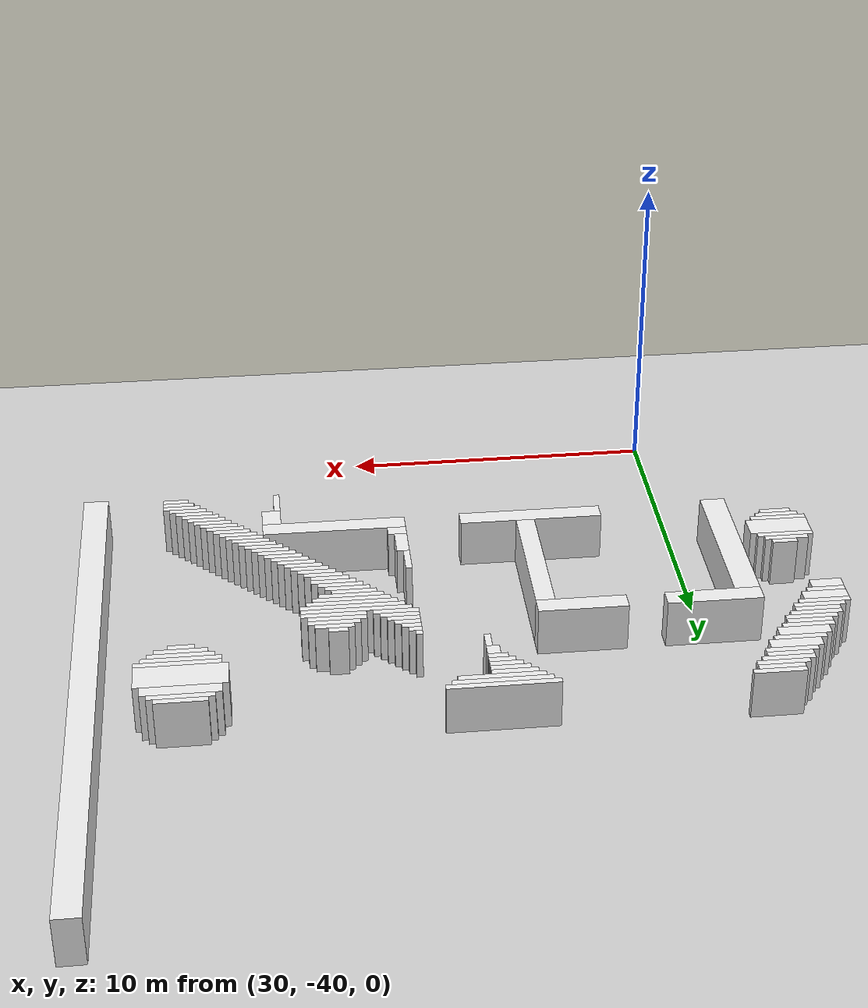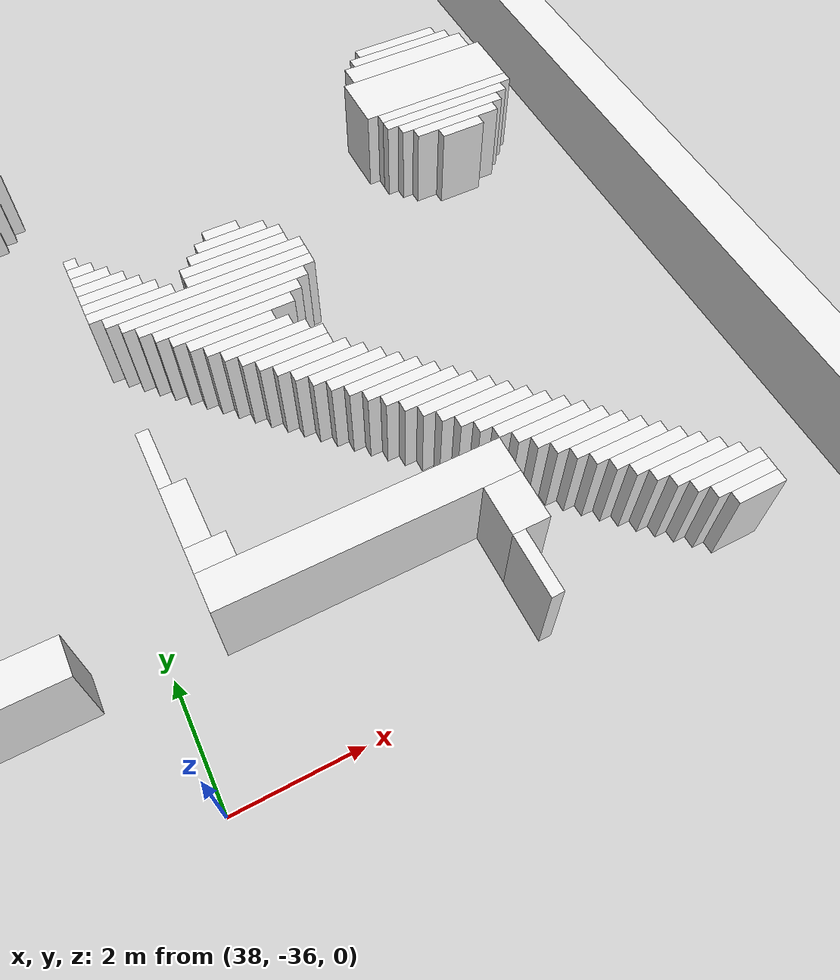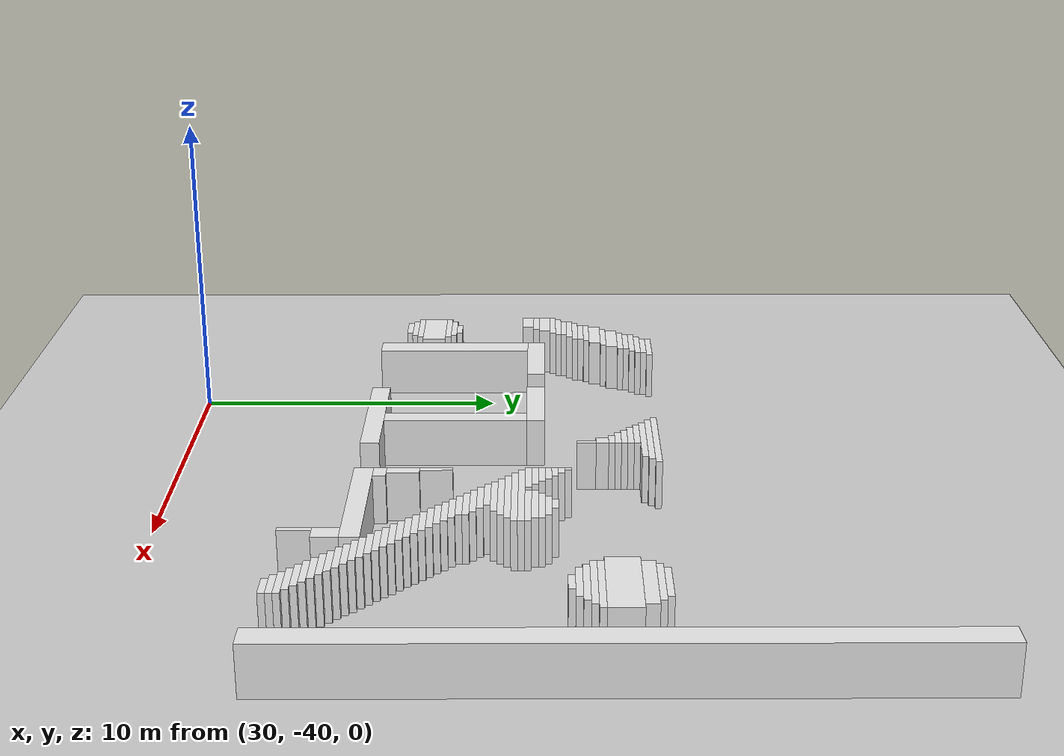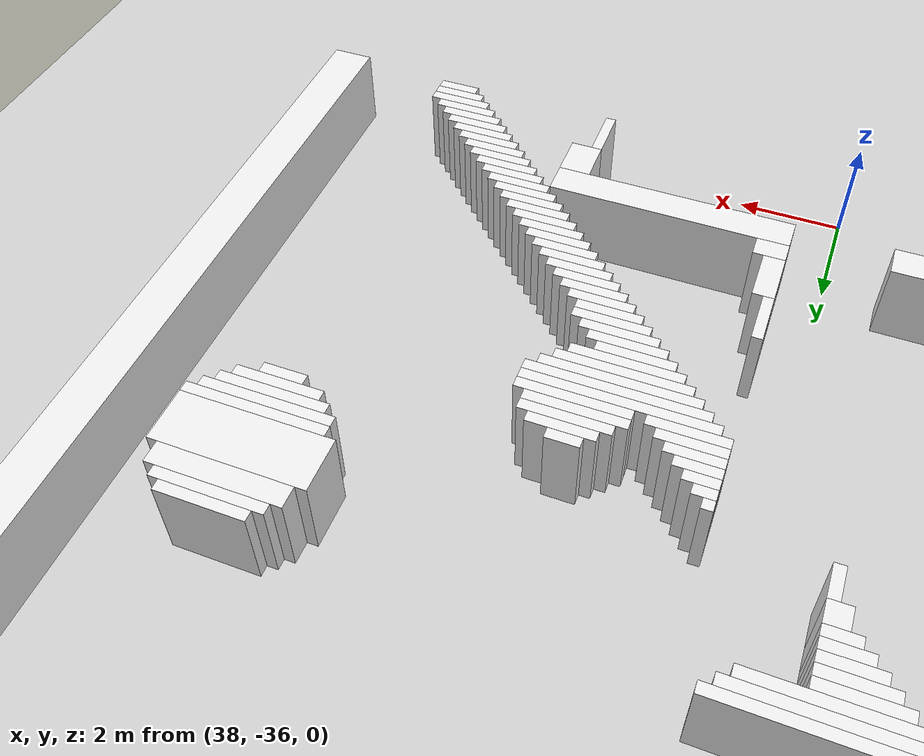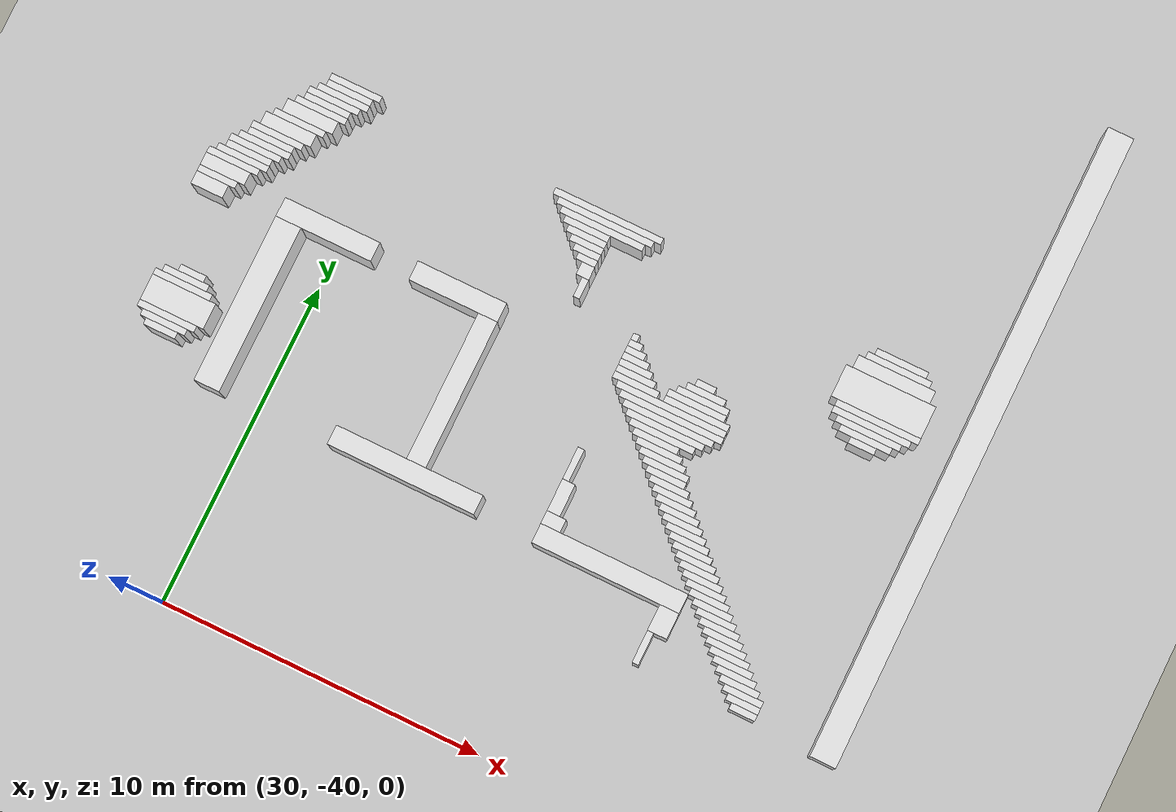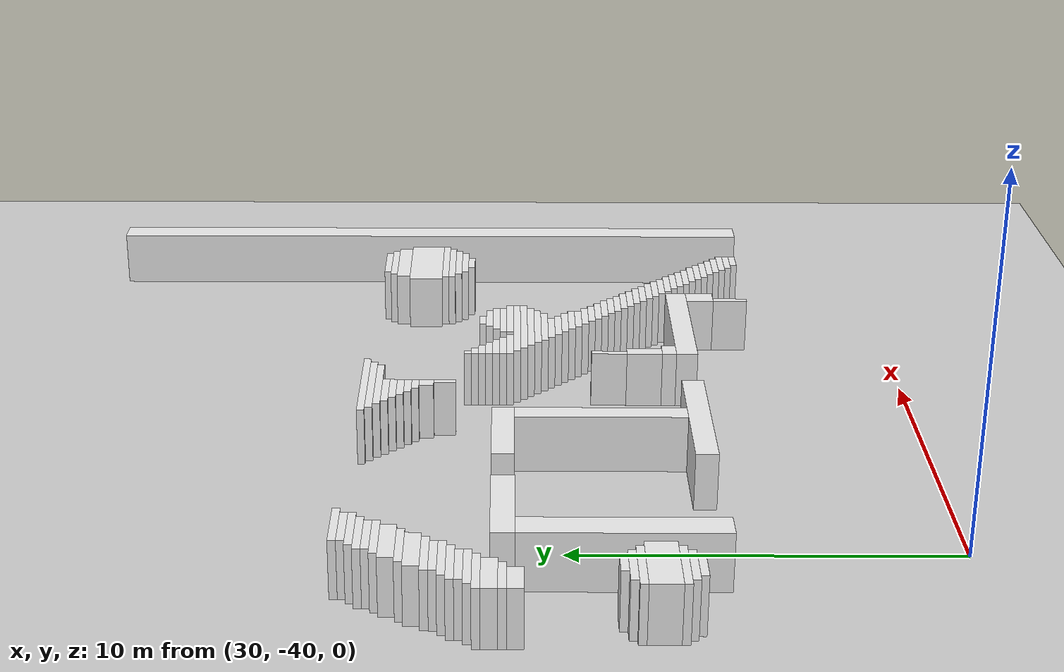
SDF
<sdf version="1.7">
 <world name="default">
  <model name="ground_plane">
   <static>1</static>
   <link name="link">
    <collision name="collision">
     <geometry><plane><normal>0 0 1</normal><size>120 120</size></plane></geometry>
    </collision>
    <visual name="visual">
     <geometry><plane><normal>0 0 1</normal><size>120 120</size></plane></geometry>
     <material>
      <script><uri>file://media/materials/scripts/gazebo.material</uri><name>Gazebo/Grey</name></script>
     </material>
    </visual>
   </link>
  </model>
  <model name="random_complex_01_model">
   <static>1</static>
   <link name="obs_2736">
    <pose>28.6000 -24.5000 0.8000 0 0 0</pose>
    <collision name="obs_2736_col"><geometry><box><size>1.6000 0.2000 1.6000</size></box></geometry></collision>
    <visual name="obs_2736_vis">
     <geometry><box><size>1.6000 0.2000 1.6000</size></box></geometry>
     <material>
      <script><uri>file://media/materials/scripts/gazebo.material</uri><name>Gazebo/White</name></script>
     </material>
    </visual>
   </link>
   <link name="obs_2742">
    <pose>28.5000 -24.7000 0.8000 0 0 0</pose>
    <collision name="obs_2742_col"><geometry><box><size>1.4000 0.2000 1.6000</size></box></geometry></collision>
    <visual name="obs_2742_vis">
     <geometry><box><size>1.4000 0.2000 1.6000</size></box></geometry>
     <material>
      <script><uri>file://media/materials/scripts/gazebo.material</uri><name>Gazebo/White</name></script>
     </material>
    </visual>
   </link>
   <link name="obs_2743">
    <pose>36.7000 -24.7000 0.8000 0 0 0</pose>
    <collision name="obs_2743_col"><geometry><box><size>3.4000 0.2000 1.6000</size></box></geometry></collision>
    <visual name="obs_2743_vis">
     <geometry><box><size>3.4000 0.2000 1.6000</size></box></geometry>
     <material>
      <script><uri>file://media/materials/scripts/gazebo.material</uri><name>Gazebo/White</name></script>
     </material>
    </visual>
   </link>
   <link name="obs_2749">
    <pose>28.4000 -24.9000 0.8000 0 0 0</pose>
    <collision name="obs_2749_col"><geometry><box><size>1.6000 0.2000 1.6000</size></box></geometry></collision>
    <visual name="obs_2749_vis">
     <geometry><box><size>1.6000 0.2000 1.6000</size></box></geometry>
     <material>
      <script><uri>file://media/materials/scripts/gazebo.material</uri><name>Gazebo/White</name></script>
     </material>
    </visual>
   </link>
   <link name="obs_2750">
    <pose>36.7000 -24.9000 0.8000 0 0 0</pose>
    <collision name="obs_2750_col"><geometry><box><size>3.0000 0.2000 1.6000</size></box></geometry></collision>
    <visual name="obs_2750_vis">
     <geometry><box><size>3.0000 0.2000 1.6000</size></box></geometry>
     <material>
      <script><uri>file://media/materials/scripts/gazebo.material</uri><name>Gazebo/White</name></script>
     </material>
    </visual>
   </link>
   <link name="obs_2751">
    <pose>46.0000 -24.9000 0.8000 0 0 0</pose>
    <collision name="obs_2751_col"><geometry><box><size>1.6000 0.2000 1.6000</size></box></geometry></collision>
    <visual name="obs_2751_vis">
     <geometry><box><size>1.6000 0.2000 1.6000</size></box></geometry>
     <material>
      <script><uri>file://media/materials/scripts/gazebo.material</uri><name>Gazebo/White</name></script>
     </material>
    </visual>
   </link>
   <link name="obs_2756">
    <pose>28.2000 -25.1000 0.8000 0 0 0</pose>
    <collision name="obs_2756_col"><geometry><box><size>1.6000 0.2000 1.6000</size></box></geometry></collision>
    <visual name="obs_2756_vis">
     <geometry><box><size>1.6000 0.2000 1.6000</size></box></geometry>
     <material>
      <script><uri>file://media/materials/scripts/gazebo.material</uri><name>Gazebo/White</name></script>
     </material>
    </visual>
   </link>
   <link name="obs_2757">
    <pose>36.7000 -25.1000 0.8000 0 0 0</pose>
    <collision name="obs_2757_col"><geometry><box><size>2.6000 0.2000 1.6000</size></box></geometry></collision>
    <visual name="obs_2757_vis">
     <geometry><box><size>2.6000 0.2000 1.6000</size></box></geometry>
     <material>
      <script><uri>file://media/materials/scripts/gazebo.material</uri><name>Gazebo/White</name></script>
     </material>
    </visual>
   </link>
   <link name="obs_2758">
    <pose>46.0000 -25.1000 0.8000 0 0 0</pose>
    <collision name="obs_2758_col"><geometry><box><size>2.0000 0.2000 1.6000</size></box></geometry></collision>
    <visual name="obs_2758_vis">
     <geometry><box><size>2.0000 0.2000 1.6000</size></box></geometry>
     <material>
      <script><uri>file://media/materials/scripts/gazebo.material</uri><name>Gazebo/White</name></script>
     </material>
    </visual>
   </link>
   <link name="obs_2762">
    <pose>28.1000 -25.3000 0.8000 0 0 0</pose>
    <collision name="obs_2762_col"><geometry><box><size>1.4000 0.2000 1.6000</size></box></geometry></collision>
    <visual name="obs_2762_vis">
     <geometry><box><size>1.4000 0.2000 1.6000</size></box></geometry>
     <material>
      <script><uri>file://media/materials/scripts/gazebo.material</uri><name>Gazebo/White</name></script>
     </material>
    </visual>
   </link>
   <link name="obs_2763">
    <pose>36.3000 -25.3000 0.8000 0 0 0</pose>
    <collision name="obs_2763_col"><geometry><box><size>1.4000 0.2000 1.6000</size></box></geometry></collision>
    <visual name="obs_2763_vis">
     <geometry><box><size>1.4000 0.2000 1.6000</size></box></geometry>
     <material>
      <script><uri>file://media/materials/scripts/gazebo.material</uri><name>Gazebo/White</name></script>
     </material>
    </visual>
   </link>
   <link name="obs_2766">
    <pose>46.0000 -25.4000 0.8000 0 0 0</pose>
    <collision name="obs_2766_col"><geometry><box><size>2.4000 0.4000 1.6000</size></box></geometry></collision>
    <visual name="obs_2766_vis">
     <geometry><box><size>2.4000 0.4000 1.6000</size></box></geometry>
     <material>
      <script><uri>file://media/materials/scripts/gazebo.material</uri><name>Gazebo/White</name></script>
     </material>
    </visual>
   </link>
   <link name="obs_2771">
    <pose>28.0000 -25.5000 0.8000 0 0 0</pose>
    <collision name="obs_2771_col"><geometry><box><size>1.6000 0.2000 1.6000</size></box></geometry></collision>
    <visual name="obs_2771_vis">
     <geometry><box><size>1.6000 0.2000 1.6000</size></box></geometry>
     <material>
      <script><uri>file://media/materials/scripts/gazebo.material</uri><name>Gazebo/White</name></script>
     </material>
    </visual>
   </link>
   <link name="obs_2772">
    <pose>36.4000 -25.5000 0.8000 0 0 0</pose>
    <collision name="obs_2772_col"><geometry><box><size>1.2000 0.2000 1.6000</size></box></geometry></collision>
    <visual name="obs_2772_vis">
     <geometry><box><size>1.2000 0.2000 1.6000</size></box></geometry>
     <material>
      <script><uri>file://media/materials/scripts/gazebo.material</uri><name>Gazebo/White</name></script>
     </material>
    </visual>
   </link>
   <link name="obs_2781">
    <pose>36.5000 -25.7000 0.8000 0 0 0</pose>
    <collision name="obs_2781_col"><geometry><box><size>1.0000 0.2000 1.6000</size></box></geometry></collision>
    <visual name="obs_2781_vis">
     <geometry><box><size>1.0000 0.2000 1.6000</size></box></geometry>
     <material>
      <script><uri>file://media/materials/scripts/gazebo.material</uri><name>Gazebo/White</name></script>
     </material>
    </visual>
   </link>
   <link name="obs_2784">
    <pose>27.8000 -25.8000 0.8000 0 0 0</pose>
    <collision name="obs_2784_col"><geometry><box><size>1.6000 0.4000 1.6000</size></box></geometry></collision>
    <visual name="obs_2784_vis">
     <geometry><box><size>1.6000 0.4000 1.6000</size></box></geometry>
     <material>
      <script><uri>file://media/materials/scripts/gazebo.material</uri><name>Gazebo/White</name></script>
     </material>
    </visual>
   </link>
   <link name="obs_2789">
    <pose>36.6000 -25.9000 0.8000 0 0 0</pose>
    <collision name="obs_2789_col"><geometry><box><size>0.8000 0.2000 1.6000</size></box></geometry></collision>
    <visual name="obs_2789_vis">
     <geometry><box><size>0.8000 0.2000 1.6000</size></box></geometry>
     <material>
      <script><uri>file://media/materials/scripts/gazebo.material</uri><name>Gazebo/White</name></script>
     </material>
    </visual>
   </link>
   <link name="obs_2797">
    <pose>27.6000 -26.1000 0.8000 0 0 0</pose>
    <collision name="obs_2797_col"><geometry><box><size>1.6000 0.2000 1.6000</size></box></geometry></collision>
    <visual name="obs_2797_vis">
     <geometry><box><size>1.6000 0.2000 1.6000</size></box></geometry>
     <material>
      <script><uri>file://media/materials/scripts/gazebo.material</uri><name>Gazebo/White</name></script>
     </material>
    </visual>
   </link>
   <link name="obs_2798">
    <pose>36.7000 -26.1000 0.8000 0 0 0</pose>
    <collision name="obs_2798_col"><geometry><box><size>0.6000 0.2000 1.6000</size></box></geometry></collision>
    <visual name="obs_2798_vis">
     <geometry><box><size>0.6000 0.2000 1.6000</size></box></geometry>
     <material>
      <script><uri>file://media/materials/scripts/gazebo.material</uri><name>Gazebo/White</name></script>
     </material>
    </visual>
   </link>
   <link name="obs_2803">
    <pose>46.0000 -26.1000 0.8000 0 0 0</pose>
    <collision name="obs_2803_col"><geometry><box><size>2.8000 1.0000 1.6000</size></box></geometry></collision>
    <visual name="obs_2803_vis">
     <geometry><box><size>2.8000 1.0000 1.6000</size></box></geometry>
     <material>
      <script><uri>file://media/materials/scripts/gazebo.material</uri><name>Gazebo/White</name></script>
     </material>
    </visual>
   </link>
   <link name="obs_2804">
    <pose>27.4000 -26.4000 0.8000 0 0 0</pose>
    <collision name="obs_2804_col"><geometry><box><size>1.6000 0.4000 1.6000</size></box></geometry></collision>
    <visual name="obs_2804_vis">
     <geometry><box><size>1.6000 0.4000 1.6000</size></box></geometry>
     <material>
      <script><uri>file://media/materials/scripts/gazebo.material</uri><name>Gazebo/White</name></script>
     </material>
    </visual>
   </link>
   <link name="obs_2805">
    <pose>36.8000 -26.4000 0.8000 0 0 0</pose>
    <collision name="obs_2805_col"><geometry><box><size>0.4000 0.4000 1.6000</size></box></geometry></collision>
    <visual name="obs_2805_vis">
     <geometry><box><size>0.4000 0.4000 1.6000</size></box></geometry>
     <material>
      <script><uri>file://media/materials/scripts/gazebo.material</uri><name>Gazebo/White</name></script>
     </material>
    </visual>
   </link>
   <link name="obs_2812">
    <pose>27.2000 -26.7000 0.8000 0 0 0</pose>
    <collision name="obs_2812_col"><geometry><box><size>1.6000 0.2000 1.6000</size></box></geometry></collision>
    <visual name="obs_2812_vis">
     <geometry><box><size>1.6000 0.2000 1.6000</size></box></geometry>
     <material>
      <script><uri>file://media/materials/scripts/gazebo.material</uri><name>Gazebo/White</name></script>
     </material>
    </visual>
   </link>
   <link name="obs_2813">
    <pose>46.1000 -26.7000 0.8000 0 0 0</pose>
    <collision name="obs_2813_col"><geometry><box><size>2.6000 0.2000 1.6000</size></box></geometry></collision>
    <visual name="obs_2813_vis">
     <geometry><box><size>2.6000 0.2000 1.6000</size></box></geometry>
     <material>
      <script><uri>file://media/materials/scripts/gazebo.material</uri><name>Gazebo/White</name></script>
     </material>
    </visual>
   </link>
   <link name="obs_2819">
    <pose>27.1000 -26.9000 0.8000 0 0 0</pose>
    <collision name="obs_2819_col"><geometry><box><size>1.4000 0.2000 1.6000</size></box></geometry></collision>
    <visual name="obs_2819_vis">
     <geometry><box><size>1.4000 0.2000 1.6000</size></box></geometry>
     <material>
      <script><uri>file://media/materials/scripts/gazebo.material</uri><name>Gazebo/White</name></script>
     </material>
    </visual>
   </link>
   <link name="obs_2820">
    <pose>46.0000 -26.9000 0.8000 0 0 0</pose>
    <collision name="obs_2820_col"><geometry><box><size>2.4000 0.2000 1.6000</size></box></geometry></collision>
    <visual name="obs_2820_vis">
     <geometry><box><size>2.4000 0.2000 1.6000</size></box></geometry>
     <material>
      <script><uri>file://media/materials/scripts/gazebo.material</uri><name>Gazebo/White</name></script>
     </material>
    </visual>
   </link>
   <link name="obs_2822">
    <pose>36.9000 -26.9000 0.8000 0 0 0</pose>
    <collision name="obs_2822_col"><geometry><box><size>0.2000 0.6000 1.6000</size></box></geometry></collision>
    <visual name="obs_2822_vis">
     <geometry><box><size>0.2000 0.6000 1.6000</size></box></geometry>
     <material>
      <script><uri>file://media/materials/scripts/gazebo.material</uri><name>Gazebo/White</name></script>
     </material>
    </visual>
   </link>
   <link name="obs_2826">
    <pose>27.0000 -27.1000 0.8000 0 0 0</pose>
    <collision name="obs_2826_col"><geometry><box><size>1.6000 0.2000 1.6000</size></box></geometry></collision>
    <visual name="obs_2826_vis">
     <geometry><box><size>1.6000 0.2000 1.6000</size></box></geometry>
     <material>
      <script><uri>file://media/materials/scripts/gazebo.material</uri><name>Gazebo/White</name></script>
     </material>
    </visual>
   </link>
   <link name="obs_2827">
    <pose>46.0000 -27.1000 0.8000 0 0 0</pose>
    <collision name="obs_2827_col"><geometry><box><size>2.0000 0.2000 1.6000</size></box></geometry></collision>
    <visual name="obs_2827_vis">
     <geometry><box><size>2.0000 0.2000 1.6000</size></box></geometry>
     <material>
      <script><uri>file://media/materials/scripts/gazebo.material</uri><name>Gazebo/White</name></script>
     </material>
    </visual>
   </link>
   <link name="obs_2834">
    <pose>26.8000 -27.3000 0.8000 0 0 0</pose>
    <collision name="obs_2834_col"><geometry><box><size>1.6000 0.2000 1.6000</size></box></geometry></collision>
    <visual name="obs_2834_vis">
     <geometry><box><size>1.6000 0.2000 1.6000</size></box></geometry>
     <material>
      <script><uri>file://media/materials/scripts/gazebo.material</uri><name>Gazebo/White</name></script>
     </material>
    </visual>
   </link>
   <link name="obs_2835">
    <pose>46.0000 -27.3000 0.8000 0 0 0</pose>
    <collision name="obs_2835_col"><geometry><box><size>1.6000 0.2000 1.6000</size></box></geometry></collision>
    <visual name="obs_2835_vis">
     <geometry><box><size>1.6000 0.2000 1.6000</size></box></geometry>
     <material>
      <script><uri>file://media/materials/scripts/gazebo.material</uri><name>Gazebo/White</name></script>
     </material>
    </visual>
   </link>
   <link name="obs_2839">
    <pose>26.7000 -27.5000 0.8000 0 0 0</pose>
    <collision name="obs_2839_col"><geometry><box><size>1.4000 0.2000 1.6000</size></box></geometry></collision>
    <visual name="obs_2839_vis">
     <geometry><box><size>1.4000 0.2000 1.6000</size></box></geometry>
     <material>
      <script><uri>file://media/materials/scripts/gazebo.material</uri><name>Gazebo/White</name></script>
     </material>
    </visual>
   </link>
   <link name="obs_2840">
    <pose>38.9000 -27.5000 0.8000 0 0 0</pose>
    <collision name="obs_2840_col"><geometry><box><size>0.2000 0.2000 1.6000</size></box></geometry></collision>
    <visual name="obs_2840_vis">
     <geometry><box><size>0.2000 0.2000 1.6000</size></box></geometry>
     <material>
      <script><uri>file://media/materials/scripts/gazebo.material</uri><name>Gazebo/White</name></script>
     </material>
    </visual>
   </link>
   <link name="obs_2841">
    <pose>46.0000 -27.5000 0.8000 0 0 0</pose>
    <collision name="obs_2841_col"><geometry><box><size>0.8000 0.2000 1.6000</size></box></geometry></collision>
    <visual name="obs_2841_vis">
     <geometry><box><size>0.8000 0.2000 1.6000</size></box></geometry>
     <material>
      <script><uri>file://media/materials/scripts/gazebo.material</uri><name>Gazebo/White</name></script>
     </material>
    </visual>
   </link>
   <link name="obs_2850">
    <pose>26.6000 -27.7000 0.8000 0 0 0</pose>
    <collision name="obs_2850_col"><geometry><box><size>1.6000 0.2000 1.6000</size></box></geometry></collision>
    <visual name="obs_2850_vis">
     <geometry><box><size>1.6000 0.2000 1.6000</size></box></geometry>
     <material>
      <script><uri>file://media/materials/scripts/gazebo.material</uri><name>Gazebo/White</name></script>
     </material>
    </visual>
   </link>
   <link name="obs_2851">
    <pose>39.0000 -27.7000 0.8000 0 0 0</pose>
    <collision name="obs_2851_col"><geometry><box><size>0.4000 0.2000 1.6000</size></box></geometry></collision>
    <visual name="obs_2851_vis">
     <geometry><box><size>0.4000 0.2000 1.6000</size></box></geometry>
     <material>
      <script><uri>file://media/materials/scripts/gazebo.material</uri><name>Gazebo/White</name></script>
     </material>
    </visual>
   </link>
   <link name="obs_2858">
    <pose>26.4000 -27.9000 0.8000 0 0 0</pose>
    <collision name="obs_2858_col"><geometry><box><size>1.6000 0.2000 1.6000</size></box></geometry></collision>
    <visual name="obs_2858_vis">
     <geometry><box><size>1.6000 0.2000 1.6000</size></box></geometry>
     <material>
      <script><uri>file://media/materials/scripts/gazebo.material</uri><name>Gazebo/White</name></script>
     </material>
    </visual>
   </link>
   <link name="obs_2859">
    <pose>39.1000 -27.9000 0.8000 0 0 0</pose>
    <collision name="obs_2859_col"><geometry><box><size>0.6000 0.2000 1.6000</size></box></geometry></collision>
    <visual name="obs_2859_vis">
     <geometry><box><size>0.6000 0.2000 1.6000</size></box></geometry>
     <material>
      <script><uri>file://media/materials/scripts/gazebo.material</uri><name>Gazebo/White</name></script>
     </material>
    </visual>
   </link>
   <link name="obs_2860">
    <pose>41.3000 -27.9000 0.8000 0 0 0</pose>
    <collision name="obs_2860_col"><geometry><box><size>0.6000 0.2000 1.6000</size></box></geometry></collision>
    <visual name="obs_2860_vis">
     <geometry><box><size>0.6000 0.2000 1.6000</size></box></geometry>
     <material>
      <script><uri>file://media/materials/scripts/gazebo.material</uri><name>Gazebo/White</name></script>
     </material>
    </visual>
   </link>
   <link name="obs_2867">
    <pose>39.2000 -28.1000 0.8000 0 0 0</pose>
    <collision name="obs_2867_col"><geometry><box><size>0.8000 0.2000 1.6000</size></box></geometry></collision>
    <visual name="obs_2867_vis">
     <geometry><box><size>0.8000 0.2000 1.6000</size></box></geometry>
     <material>
      <script><uri>file://media/materials/scripts/gazebo.material</uri><name>Gazebo/White</name></script>
     </material>
    </visual>
   </link>
   <link name="obs_2868">
    <pose>41.4000 -28.1000 0.8000 0 0 0</pose>
    <collision name="obs_2868_col"><geometry><box><size>1.2000 0.2000 1.6000</size></box></geometry></collision>
    <visual name="obs_2868_vis">
     <geometry><box><size>1.2000 0.2000 1.6000</size></box></geometry>
     <material>
      <script><uri>file://media/materials/scripts/gazebo.material</uri><name>Gazebo/White</name></script>
     </material>
    </visual>
   </link>
   <link name="obs_2869">
    <pose>26.3000 -28.2000 0.8000 0 0 0</pose>
    <collision name="obs_2869_col"><geometry><box><size>1.4000 0.4000 1.6000</size></box></geometry></collision>
    <visual name="obs_2869_vis">
     <geometry><box><size>1.4000 0.4000 1.6000</size></box></geometry>
     <material>
      <script><uri>file://media/materials/scripts/gazebo.material</uri><name>Gazebo/White</name></script>
     </material>
    </visual>
   </link>
   <link name="obs_2874">
    <pose>39.3000 -28.3000 0.8000 0 0 0</pose>
    <collision name="obs_2874_col"><geometry><box><size>1.0000 0.2000 1.6000</size></box></geometry></collision>
    <visual name="obs_2874_vis">
     <geometry><box><size>1.0000 0.2000 1.6000</size></box></geometry>
     <material>
      <script><uri>file://media/materials/scripts/gazebo.material</uri><name>Gazebo/White</name></script>
     </material>
    </visual>
   </link>
   <link name="obs_2875">
    <pose>41.4000 -28.3000 0.8000 0 0 0</pose>
    <collision name="obs_2875_col"><geometry><box><size>1.6000 0.2000 1.6000</size></box></geometry></collision>
    <visual name="obs_2875_vis">
     <geometry><box><size>1.6000 0.2000 1.6000</size></box></geometry>
     <material>
      <script><uri>file://media/materials/scripts/gazebo.material</uri><name>Gazebo/White</name></script>
     </material>
    </visual>
   </link>
   <link name="obs_2883">
    <pose>26.2000 -28.5000 0.8000 0 0 0</pose>
    <collision name="obs_2883_col"><geometry><box><size>1.2000 0.2000 1.6000</size></box></geometry></collision>
    <visual name="obs_2883_vis">
     <geometry><box><size>1.2000 0.2000 1.6000</size></box></geometry>
     <material>
      <script><uri>file://media/materials/scripts/gazebo.material</uri><name>Gazebo/White</name></script>
     </material>
    </visual>
   </link>
   <link name="obs_2884">
    <pose>39.4000 -28.5000 0.8000 0 0 0</pose>
    <collision name="obs_2884_col"><geometry><box><size>1.2000 0.2000 1.6000</size></box></geometry></collision>
    <visual name="obs_2884_vis">
     <geometry><box><size>1.2000 0.2000 1.6000</size></box></geometry>
     <material>
      <script><uri>file://media/materials/scripts/gazebo.material</uri><name>Gazebo/White</name></script>
     </material>
    </visual>
   </link>
   <link name="obs_2885">
    <pose>41.3000 -28.5000 0.8000 0 0 0</pose>
    <collision name="obs_2885_col"><geometry><box><size>1.8000 0.2000 1.6000</size></box></geometry></collision>
    <visual name="obs_2885_vis">
     <geometry><box><size>1.8000 0.2000 1.6000</size></box></geometry>
     <material>
      <script><uri>file://media/materials/scripts/gazebo.material</uri><name>Gazebo/White</name></script>
     </material>
    </visual>
   </link>
   <link name="obs_2886">
    <pose>29.7000 -28.5000 0.8000 0 0 0</pose>
    <collision name="obs_2886_col"><geometry><box><size>3.0000 0.6000 1.6000</size></box></geometry></collision>
    <visual name="obs_2886_vis">
     <geometry><box><size>3.0000 0.6000 1.6000</size></box></geometry>
     <material>
      <script><uri>file://media/materials/scripts/gazebo.material</uri><name>Gazebo/White</name></script>
     </material>
    </visual>
   </link>
   <link name="obs_2887">
    <pose>33.8000 -28.5000 0.8000 0 0 0</pose>
    <collision name="obs_2887_col"><geometry><box><size>2.8000 0.6000 1.6000</size></box></geometry></collision>
    <visual name="obs_2887_vis">
     <geometry><box><size>2.8000 0.6000 1.6000</size></box></geometry>
     <material>
      <script><uri>file://media/materials/scripts/gazebo.material</uri><name>Gazebo/White</name></script>
     </material>
    </visual>
   </link>
   <link name="obs_2894">
    <pose>39.5000 -28.7000 0.8000 0 0 0</pose>
    <collision name="obs_2894_col"><geometry><box><size>1.4000 0.2000 1.6000</size></box></geometry></collision>
    <visual name="obs_2894_vis">
     <geometry><box><size>1.4000 0.2000 1.6000</size></box></geometry>
     <material>
      <script><uri>file://media/materials/scripts/gazebo.material</uri><name>Gazebo/White</name></script>
     </material>
    </visual>
   </link>
   <link name="obs_2895">
    <pose>41.4000 -28.7000 0.8000 0 0 0</pose>
    <collision name="obs_2895_col"><geometry><box><size>2.0000 0.2000 1.6000</size></box></geometry></collision>
    <visual name="obs_2895_vis">
     <geometry><box><size>2.0000 0.2000 1.6000</size></box></geometry>
     <material>
      <script><uri>file://media/materials/scripts/gazebo.material</uri><name>Gazebo/White</name></script>
     </material>
    </visual>
   </link>
   <link name="obs_2897">
    <pose>26.1000 -28.8000 0.8000 0 0 0</pose>
    <collision name="obs_2897_col"><geometry><box><size>1.0000 0.4000 1.6000</size></box></geometry></collision>
    <visual name="obs_2897_vis">
     <geometry><box><size>1.0000 0.4000 1.6000</size></box></geometry>
     <material>
      <script><uri>file://media/materials/scripts/gazebo.material</uri><name>Gazebo/White</name></script>
     </material>
    </visual>
   </link>
   <link name="obs_2902">
    <pose>40.7000 -28.9000 0.8000 0 0 0</pose>
    <collision name="obs_2902_col"><geometry><box><size>3.4000 0.2000 1.6000</size></box></geometry></collision>
    <visual name="obs_2902_vis">
     <geometry><box><size>3.4000 0.2000 1.6000</size></box></geometry>
     <material>
      <script><uri>file://media/materials/scripts/gazebo.material</uri><name>Gazebo/White</name></script>
     </material>
    </visual>
   </link>
   <link name="obs_2908">
    <pose>40.8000 -29.1000 0.8000 0 0 0</pose>
    <collision name="obs_2908_col"><geometry><box><size>3.2000 0.2000 1.6000</size></box></geometry></collision>
    <visual name="obs_2908_vis">
     <geometry><box><size>3.2000 0.2000 1.6000</size></box></geometry>
     <material>
      <script><uri>file://media/materials/scripts/gazebo.material</uri><name>Gazebo/White</name></script>
     </material>
    </visual>
   </link>
   <link name="obs_2915">
    <pose>40.8000 -29.3000 0.8000 0 0 0</pose>
    <collision name="obs_2915_col"><geometry><box><size>2.8000 0.2000 1.6000</size></box></geometry></collision>
    <visual name="obs_2915_vis">
     <geometry><box><size>2.8000 0.2000 1.6000</size></box></geometry>
     <material>
      <script><uri>file://media/materials/scripts/gazebo.material</uri><name>Gazebo/White</name></script>
     </material>
    </visual>
   </link>
   <link name="obs_2920">
    <pose>40.8000 -29.5000 0.8000 0 0 0</pose>
    <collision name="obs_2920_col"><geometry><box><size>2.4000 0.2000 1.6000</size></box></geometry></collision>
    <visual name="obs_2920_vis">
     <geometry><box><size>2.4000 0.2000 1.6000</size></box></geometry>
     <material>
      <script><uri>file://media/materials/scripts/gazebo.material</uri><name>Gazebo/White</name></script>
     </material>
    </visual>
   </link>
   <link name="obs_2927">
    <pose>40.8000 -29.7000 0.8000 0 0 0</pose>
    <collision name="obs_2927_col"><geometry><box><size>2.0000 0.2000 1.6000</size></box></geometry></collision>
    <visual name="obs_2927_vis">
     <geometry><box><size>2.0000 0.2000 1.6000</size></box></geometry>
     <material>
      <script><uri>file://media/materials/scripts/gazebo.material</uri><name>Gazebo/White</name></script>
     </material>
    </visual>
   </link>
   <link name="obs_2935">
    <pose>40.7000 -29.9000 0.8000 0 0 0</pose>
    <collision name="obs_2935_col"><geometry><box><size>1.4000 0.2000 1.6000</size></box></geometry></collision>
    <visual name="obs_2935_vis">
     <geometry><box><size>1.4000 0.2000 1.6000</size></box></geometry>
     <material>
      <script><uri>file://media/materials/scripts/gazebo.material</uri><name>Gazebo/White</name></script>
     </material>
    </visual>
   </link>
   <link name="obs_2942">
    <pose>40.9000 -30.1000 0.8000 0 0 0</pose>
    <collision name="obs_2942_col"><geometry><box><size>1.4000 0.2000 1.6000</size></box></geometry></collision>
    <visual name="obs_2942_vis">
     <geometry><box><size>1.4000 0.2000 1.6000</size></box></geometry>
     <material>
      <script><uri>file://media/materials/scripts/gazebo.material</uri><name>Gazebo/White</name></script>
     </material>
    </visual>
   </link>
   <link name="obs_2947">
    <pose>41.1000 -30.3000 0.8000 0 0 0</pose>
    <collision name="obs_2947_col"><geometry><box><size>1.4000 0.2000 1.6000</size></box></geometry></collision>
    <visual name="obs_2947_vis">
     <geometry><box><size>1.4000 0.2000 1.6000</size></box></geometry>
     <material>
      <script><uri>file://media/materials/scripts/gazebo.material</uri><name>Gazebo/White</name></script>
     </material>
    </visual>
   </link>
   <link name="obs_2953">
    <pose>41.3000 -30.5000 0.8000 0 0 0</pose>
    <collision name="obs_2953_col"><geometry><box><size>1.4000 0.2000 1.6000</size></box></geometry></collision>
    <visual name="obs_2953_vis">
     <geometry><box><size>1.4000 0.2000 1.6000</size></box></geometry>
     <material>
      <script><uri>file://media/materials/scripts/gazebo.material</uri><name>Gazebo/White</name></script>
     </material>
    </visual>
   </link>
   <link name="obs_2961">
    <pose>41.4000 -30.7000 0.8000 0 0 0</pose>
    <collision name="obs_2961_col"><geometry><box><size>1.2000 0.2000 1.6000</size></box></geometry></collision>
    <visual name="obs_2961_vis">
     <geometry><box><size>1.2000 0.2000 1.6000</size></box></geometry>
     <material>
      <script><uri>file://media/materials/scripts/gazebo.material</uri><name>Gazebo/White</name></script>
     </material>
    </visual>
   </link>
   <link name="obs_2968">
    <pose>41.6000 -30.9000 0.8000 0 0 0</pose>
    <collision name="obs_2968_col"><geometry><box><size>1.2000 0.2000 1.6000</size></box></geometry></collision>
    <visual name="obs_2968_vis">
     <geometry><box><size>1.2000 0.2000 1.6000</size></box></geometry>
     <material>
      <script><uri>file://media/materials/scripts/gazebo.material</uri><name>Gazebo/White</name></script>
     </material>
    </visual>
   </link>
   <link name="obs_2974">
    <pose>41.8000 -31.1000 0.8000 0 0 0</pose>
    <collision name="obs_2974_col"><geometry><box><size>1.2000 0.2000 1.6000</size></box></geometry></collision>
    <visual name="obs_2974_vis">
     <geometry><box><size>1.2000 0.2000 1.6000</size></box></geometry>
     <material>
      <script><uri>file://media/materials/scripts/gazebo.material</uri><name>Gazebo/White</name></script>
     </material>
    </visual>
   </link>
   <link name="obs_2979">
    <pose>26.8000 -31.3000 0.8000 0 0 0</pose>
    <collision name="obs_2979_col"><geometry><box><size>0.8000 0.2000 1.6000</size></box></geometry></collision>
    <visual name="obs_2979_vis">
     <geometry><box><size>0.8000 0.2000 1.6000</size></box></geometry>
     <material>
      <script><uri>file://media/materials/scripts/gazebo.material</uri><name>Gazebo/White</name></script>
     </material>
    </visual>
   </link>
   <link name="obs_2980">
    <pose>42.0000 -31.3000 0.8000 0 0 0</pose>
    <collision name="obs_2980_col"><geometry><box><size>1.2000 0.2000 1.6000</size></box></geometry></collision>
    <visual name="obs_2980_vis">
     <geometry><box><size>1.2000 0.2000 1.6000</size></box></geometry>
     <material>
      <script><uri>file://media/materials/scripts/gazebo.material</uri><name>Gazebo/White</name></script>
     </material>
    </visual>
   </link>
   <link name="obs_2985">
    <pose>26.7000 -31.5000 0.8000 0 0 0</pose>
    <collision name="obs_2985_col"><geometry><box><size>1.4000 0.2000 1.6000</size></box></geometry></collision>
    <visual name="obs_2985_vis">
     <geometry><box><size>1.4000 0.2000 1.6000</size></box></geometry>
     <material>
      <script><uri>file://media/materials/scripts/gazebo.material</uri><name>Gazebo/White</name></script>
     </material>
    </visual>
   </link>
   <link name="obs_2986">
    <pose>42.2000 -31.5000 0.8000 0 0 0</pose>
    <collision name="obs_2986_col"><geometry><box><size>1.2000 0.2000 1.6000</size></box></geometry></collision>
    <visual name="obs_2986_vis">
     <geometry><box><size>1.2000 0.2000 1.6000</size></box></geometry>
     <material>
      <script><uri>file://media/materials/scripts/gazebo.material</uri><name>Gazebo/White</name></script>
     </material>
    </visual>
   </link>
   <link name="obs_2990">
    <pose>26.7000 -31.7000 0.8000 0 0 0</pose>
    <collision name="obs_2990_col"><geometry><box><size>1.8000 0.2000 1.6000</size></box></geometry></collision>
    <visual name="obs_2990_vis">
     <geometry><box><size>1.8000 0.2000 1.6000</size></box></geometry>
     <material>
      <script><uri>file://media/materials/scripts/gazebo.material</uri><name>Gazebo/White</name></script>
     </material>
    </visual>
   </link>
   <link name="obs_2991">
    <pose>42.4000 -31.7000 0.8000 0 0 0</pose>
    <collision name="obs_2991_col"><geometry><box><size>1.2000 0.2000 1.6000</size></box></geometry></collision>
    <visual name="obs_2991_vis">
     <geometry><box><size>1.2000 0.2000 1.6000</size></box></geometry>
     <material>
      <script><uri>file://media/materials/scripts/gazebo.material</uri><name>Gazebo/White</name></script>
     </material>
    </visual>
   </link>
   <link name="obs_2993">
    <pose>38.9000 -31.5000 0.8000 0 0 0</pose>
    <collision name="obs_2993_col"><geometry><box><size>0.2000 1.0000 1.6000</size></box></geometry></collision>
    <visual name="obs_2993_vis">
     <geometry><box><size>0.2000 1.0000 1.6000</size></box></geometry>
     <material>
      <script><uri>file://media/materials/scripts/gazebo.material</uri><name>Gazebo/White</name></script>
     </material>
    </visual>
   </link>
   <link name="obs_2998">
    <pose>42.6000 -31.9000 0.8000 0 0 0</pose>
    <collision name="obs_2998_col"><geometry><box><size>1.2000 0.2000 1.6000</size></box></geometry></collision>
    <visual name="obs_2998_vis">
     <geometry><box><size>1.2000 0.2000 1.6000</size></box></geometry>
     <material>
      <script><uri>file://media/materials/scripts/gazebo.material</uri><name>Gazebo/White</name></script>
     </material>
    </visual>
   </link>
   <link name="obs_3004">
    <pose>42.8000 -32.1000 0.8000 0 0 0</pose>
    <collision name="obs_3004_col"><geometry><box><size>1.2000 0.2000 1.6000</size></box></geometry></collision>
    <visual name="obs_3004_vis">
     <geometry><box><size>1.2000 0.2000 1.6000</size></box></geometry>
     <material>
      <script><uri>file://media/materials/scripts/gazebo.material</uri><name>Gazebo/White</name></script>
     </material>
    </visual>
   </link>
   <link name="obs_3011">
    <pose>43.0000 -32.3000 0.8000 0 0 0</pose>
    <collision name="obs_3011_col"><geometry><box><size>1.2000 0.2000 1.6000</size></box></geometry></collision>
    <visual name="obs_3011_vis">
     <geometry><box><size>1.2000 0.2000 1.6000</size></box></geometry>
     <material>
      <script><uri>file://media/materials/scripts/gazebo.material</uri><name>Gazebo/White</name></script>
     </material>
    </visual>
   </link>
   <link name="obs_3012">
    <pose>26.8000 -32.2000 0.8000 0 0 0</pose>
    <collision name="obs_3012_col"><geometry><box><size>2.0000 0.8000 1.6000</size></box></geometry></collision>
    <visual name="obs_3012_vis">
     <geometry><box><size>2.0000 0.8000 1.6000</size></box></geometry>
     <material>
      <script><uri>file://media/materials/scripts/gazebo.material</uri><name>Gazebo/White</name></script>
     </material>
    </visual>
   </link>
   <link name="obs_3020">
    <pose>43.2000 -32.5000 0.8000 0 0 0</pose>
    <collision name="obs_3020_col"><geometry><box><size>1.2000 0.2000 1.6000</size></box></geometry></collision>
    <visual name="obs_3020_vis">
     <geometry><box><size>1.2000 0.2000 1.6000</size></box></geometry>
     <material>
      <script><uri>file://media/materials/scripts/gazebo.material</uri><name>Gazebo/White</name></script>
     </material>
    </visual>
   </link>
   <link name="obs_3025">
    <pose>26.7000 -32.7000 0.8000 0 0 0</pose>
    <collision name="obs_3025_col"><geometry><box><size>1.8000 0.2000 1.6000</size></box></geometry></collision>
    <visual name="obs_3025_vis">
     <geometry><box><size>1.8000 0.2000 1.6000</size></box></geometry>
     <material>
      <script><uri>file://media/materials/scripts/gazebo.material</uri><name>Gazebo/White</name></script>
     </material>
    </visual>
   </link>
   <link name="obs_3026">
    <pose>43.4000 -32.7000 0.8000 0 0 0</pose>
    <collision name="obs_3026_col"><geometry><box><size>1.2000 0.2000 1.6000</size></box></geometry></collision>
    <visual name="obs_3026_vis">
     <geometry><box><size>1.2000 0.2000 1.6000</size></box></geometry>
     <material>
      <script><uri>file://media/materials/scripts/gazebo.material</uri><name>Gazebo/White</name></script>
     </material>
    </visual>
   </link>
   <link name="obs_3027">
    <pose>39.0000 -32.5000 0.8000 0 0 0</pose>
    <collision name="obs_3027_col"><geometry><box><size>0.4000 1.0000 1.6000</size></box></geometry></collision>
    <visual name="obs_3027_vis">
     <geometry><box><size>0.4000 1.0000 1.6000</size></box></geometry>
     <material>
      <script><uri>file://media/materials/scripts/gazebo.material</uri><name>Gazebo/White</name></script>
     </material>
    </visual>
   </link>
   <link name="obs_3033">
    <pose>26.7000 -32.9000 0.8000 0 0 0</pose>
    <collision name="obs_3033_col"><geometry><box><size>1.4000 0.2000 1.6000</size></box></geometry></collision>
    <visual name="obs_3033_vis">
     <geometry><box><size>1.4000 0.2000 1.6000</size></box></geometry>
     <material>
      <script><uri>file://media/materials/scripts/gazebo.material</uri><name>Gazebo/White</name></script>
     </material>
    </visual>
   </link>
   <link name="obs_3034">
    <pose>43.6000 -32.9000 0.8000 0 0 0</pose>
    <collision name="obs_3034_col"><geometry><box><size>1.2000 0.2000 1.6000</size></box></geometry></collision>
    <visual name="obs_3034_vis">
     <geometry><box><size>1.2000 0.2000 1.6000</size></box></geometry>
     <material>
      <script><uri>file://media/materials/scripts/gazebo.material</uri><name>Gazebo/White</name></script>
     </material>
    </visual>
   </link>
   <link name="obs_3041">
    <pose>26.7000 -33.1000 0.8000 0 0 0</pose>
    <collision name="obs_3041_col"><geometry><box><size>1.0000 0.2000 1.6000</size></box></geometry></collision>
    <visual name="obs_3041_vis">
     <geometry><box><size>1.0000 0.2000 1.6000</size></box></geometry>
     <material>
      <script><uri>file://media/materials/scripts/gazebo.material</uri><name>Gazebo/White</name></script>
     </material>
    </visual>
   </link>
   <link name="obs_3042">
    <pose>43.8000 -33.1000 0.8000 0 0 0</pose>
    <collision name="obs_3042_col"><geometry><box><size>1.2000 0.2000 1.6000</size></box></geometry></collision>
    <visual name="obs_3042_vis">
     <geometry><box><size>1.2000 0.2000 1.6000</size></box></geometry>
     <material>
      <script><uri>file://media/materials/scripts/gazebo.material</uri><name>Gazebo/White</name></script>
     </material>
    </visual>
   </link>
   <link name="obs_3043">
    <pose>34.9000 -31.1000 0.8000 0 0 0</pose>
    <collision name="obs_3043_col"><geometry><box><size>0.6000 4.6000 1.6000</size></box></geometry></collision>
    <visual name="obs_3043_vis">
     <geometry><box><size>0.6000 4.6000 1.6000</size></box></geometry>
     <material>
      <script><uri>file://media/materials/scripts/gazebo.material</uri><name>Gazebo/White</name></script>
     </material>
    </visual>
   </link>
   <link name="obs_3046">
    <pose>39.1000 -33.2000 0.8000 0 0 0</pose>
    <collision name="obs_3046_col"><geometry><box><size>0.6000 0.4000 1.6000</size></box></geometry></collision>
    <visual name="obs_3046_vis">
     <geometry><box><size>0.6000 0.4000 1.6000</size></box></geometry>
     <material>
      <script><uri>file://media/materials/scripts/gazebo.material</uri><name>Gazebo/White</name></script>
     </material>
    </visual>
   </link>
   <link name="obs_3052">
    <pose>44.0000 -33.3000 0.8000 0 0 0</pose>
    <collision name="obs_3052_col"><geometry><box><size>1.2000 0.2000 1.6000</size></box></geometry></collision>
    <visual name="obs_3052_vis">
     <geometry><box><size>1.2000 0.2000 1.6000</size></box></geometry>
     <material>
      <script><uri>file://media/materials/scripts/gazebo.material</uri><name>Gazebo/White</name></script>
     </material>
    </visual>
   </link>
   <link name="obs_3059">
    <pose>44.2000 -33.5000 0.8000 0 0 0</pose>
    <collision name="obs_3059_col"><geometry><box><size>1.2000 0.2000 1.6000</size></box></geometry></collision>
    <visual name="obs_3059_vis">
     <geometry><box><size>1.2000 0.2000 1.6000</size></box></geometry>
     <material>
      <script><uri>file://media/materials/scripts/gazebo.material</uri><name>Gazebo/White</name></script>
     </material>
    </visual>
   </link>
   <link name="obs_3067">
    <pose>44.4000 -33.7000 0.8000 0 0 0</pose>
    <collision name="obs_3067_col"><geometry><box><size>1.2000 0.2000 1.6000</size></box></geometry></collision>
    <visual name="obs_3067_vis">
     <geometry><box><size>1.2000 0.2000 1.6000</size></box></geometry>
     <material>
      <script><uri>file://media/materials/scripts/gazebo.material</uri><name>Gazebo/White</name></script>
     </material>
    </visual>
   </link>
   <link name="obs_3068">
    <pose>28.6000 -31.4000 0.8000 0 0 0</pose>
    <collision name="obs_3068_col"><geometry><box><size>0.8000 5.2000 1.6000</size></box></geometry></collision>
    <visual name="obs_3068_vis">
     <geometry><box><size>0.8000 5.2000 1.6000</size></box></geometry>
     <material>
      <script><uri>file://media/materials/scripts/gazebo.material</uri><name>Gazebo/White</name></script>
     </material>
    </visual>
   </link>
   <link name="obs_3069">
    <pose>34.7000 -33.7000 0.8000 0 0 0</pose>
    <collision name="obs_3069_col"><geometry><box><size>4.6000 0.6000 1.6000</size></box></geometry></collision>
    <visual name="obs_3069_vis">
     <geometry><box><size>4.6000 0.6000 1.6000</size></box></geometry>
     <material>
      <script><uri>file://media/materials/scripts/gazebo.material</uri><name>Gazebo/White</name></script>
     </material>
    </visual>
   </link>
   <link name="obs_3070">
    <pose>41.1000 -33.7000 0.8000 0 0 0</pose>
    <collision name="obs_3070_col"><geometry><box><size>4.6000 0.6000 1.6000</size></box></geometry></collision>
    <visual name="obs_3070_vis">
     <geometry><box><size>4.6000 0.6000 1.6000</size></box></geometry>
     <material>
      <script><uri>file://media/materials/scripts/gazebo.material</uri><name>Gazebo/White</name></script>
     </material>
    </visual>
   </link>
   <link name="obs_3076">
    <pose>44.6000 -33.9000 0.8000 0 0 0</pose>
    <collision name="obs_3076_col"><geometry><box><size>1.2000 0.2000 1.6000</size></box></geometry></collision>
    <visual name="obs_3076_vis">
     <geometry><box><size>1.2000 0.2000 1.6000</size></box></geometry>
     <material>
      <script><uri>file://media/materials/scripts/gazebo.material</uri><name>Gazebo/White</name></script>
     </material>
    </visual>
   </link>
   <link name="obs_3084">
    <pose>44.8000 -34.1000 0.8000 0 0 0</pose>
    <collision name="obs_3084_col"><geometry><box><size>1.2000 0.2000 1.6000</size></box></geometry></collision>
    <visual name="obs_3084_vis">
     <geometry><box><size>1.2000 0.2000 1.6000</size></box></geometry>
     <material>
      <script><uri>file://media/materials/scripts/gazebo.material</uri><name>Gazebo/White</name></script>
     </material>
    </visual>
   </link>
   <link name="obs_3091">
    <pose>45.0000 -34.3000 0.8000 0 0 0</pose>
    <collision name="obs_3091_col"><geometry><box><size>1.2000 0.2000 1.6000</size></box></geometry></collision>
    <visual name="obs_3091_vis">
     <geometry><box><size>1.2000 0.2000 1.6000</size></box></geometry>
     <material>
      <script><uri>file://media/materials/scripts/gazebo.material</uri><name>Gazebo/White</name></script>
     </material>
    </visual>
   </link>
   <link name="obs_3096">
    <pose>45.2000 -34.5000 0.8000 0 0 0</pose>
    <collision name="obs_3096_col"><geometry><box><size>1.2000 0.2000 1.6000</size></box></geometry></collision>
    <visual name="obs_3096_vis">
     <geometry><box><size>1.2000 0.2000 1.6000</size></box></geometry>
     <material>
      <script><uri>file://media/materials/scripts/gazebo.material</uri><name>Gazebo/White</name></script>
     </material>
    </visual>
   </link>
   <link name="obs_3097">
    <pose>43.1000 -34.4000 0.8000 0 0 0</pose>
    <collision name="obs_3097_col"><geometry><box><size>0.6000 0.8000 1.6000</size></box></geometry></collision>
    <visual name="obs_3097_vis">
     <geometry><box><size>0.6000 0.8000 1.6000</size></box></geometry>
     <material>
      <script><uri>file://media/materials/scripts/gazebo.material</uri><name>Gazebo/White</name></script>
     </material>
    </visual>
   </link>
   <link name="obs_3103">
    <pose>45.4000 -34.7000 0.8000 0 0 0</pose>
    <collision name="obs_3103_col"><geometry><box><size>1.2000 0.2000 1.6000</size></box></geometry></collision>
    <visual name="obs_3103_vis">
     <geometry><box><size>1.2000 0.2000 1.6000</size></box></geometry>
     <material>
      <script><uri>file://media/materials/scripts/gazebo.material</uri><name>Gazebo/White</name></script>
     </material>
    </visual>
   </link>
   <link name="obs_3114">
    <pose>45.6000 -34.9000 0.8000 0 0 0</pose>
    <collision name="obs_3114_col"><geometry><box><size>1.2000 0.2000 1.6000</size></box></geometry></collision>
    <visual name="obs_3114_vis">
     <geometry><box><size>1.2000 0.2000 1.6000</size></box></geometry>
     <material>
      <script><uri>file://media/materials/scripts/gazebo.material</uri><name>Gazebo/White</name></script>
     </material>
    </visual>
   </link>
   <link name="obs_3120">
    <pose>45.8000 -35.1000 0.8000 0 0 0</pose>
    <collision name="obs_3120_col"><geometry><box><size>1.2000 0.2000 1.6000</size></box></geometry></collision>
    <visual name="obs_3120_vis">
     <geometry><box><size>1.2000 0.2000 1.6000</size></box></geometry>
     <material>
      <script><uri>file://media/materials/scripts/gazebo.material</uri><name>Gazebo/White</name></script>
     </material>
    </visual>
   </link>
   <link name="obs_3127">
    <pose>46.0000 -35.3000 0.8000 0 0 0</pose>
    <collision name="obs_3127_col"><geometry><box><size>1.2000 0.2000 1.6000</size></box></geometry></collision>
    <visual name="obs_3127_vis">
     <geometry><box><size>1.2000 0.2000 1.6000</size></box></geometry>
     <material>
      <script><uri>file://media/materials/scripts/gazebo.material</uri><name>Gazebo/White</name></script>
     </material>
    </visual>
   </link>
   <link name="obs_3136">
    <pose>46.1000 -35.5000 0.8000 0 0 0</pose>
    <collision name="obs_3136_col"><geometry><box><size>1.0000 0.2000 1.6000</size></box></geometry></collision>
    <visual name="obs_3136_vis">
     <geometry><box><size>1.0000 0.2000 1.6000</size></box></geometry>
     <material>
      <script><uri>file://media/materials/scripts/gazebo.material</uri><name>Gazebo/White</name></script>
     </material>
    </visual>
   </link>
   <link name="obs_3137">
    <pose>42.9000 -35.3000 0.8000 0 0 0</pose>
    <collision name="obs_3137_col"><geometry><box><size>0.2000 1.0000 1.6000</size></box></geometry></collision>
    <visual name="obs_3137_vis">
     <geometry><box><size>0.2000 1.0000 1.6000</size></box></geometry>
     <material>
      <script><uri>file://media/materials/scripts/gazebo.material</uri><name>Gazebo/White</name></script>
     </material>
    </visual>
   </link>
   <link name="obs_3145">
    <pose>46.2000 -35.7000 0.8000 0 0 0</pose>
    <collision name="obs_3145_col"><geometry><box><size>0.8000 0.2000 1.6000</size></box></geometry></collision>
    <visual name="obs_3145_vis">
     <geometry><box><size>0.8000 0.2000 1.6000</size></box></geometry>
     <material>
      <script><uri>file://media/materials/scripts/gazebo.material</uri><name>Gazebo/White</name></script>
     </material>
    </visual>
   </link>
   <link name="obs_3146">
    <pose>48.8000 -26.1000 0.8000 0 0 0</pose>
    <collision name="obs_3146_col"><geometry><box><size>0.8000 19.8000 1.6000</size></box></geometry></collision>
    <visual name="obs_3146_vis">
     <geometry><box><size>0.8000 19.8000 1.6000</size></box></geometry>
     <material>
      <script><uri>file://media/materials/scripts/gazebo.material</uri><name>Gazebo/White</name></script>
     </material>
    </visual>
   </link>
  </model>
 </world>
</sdf>
